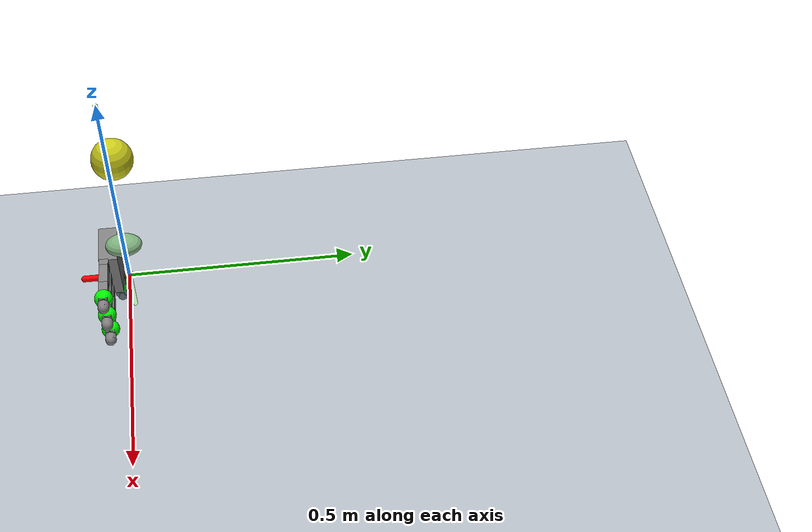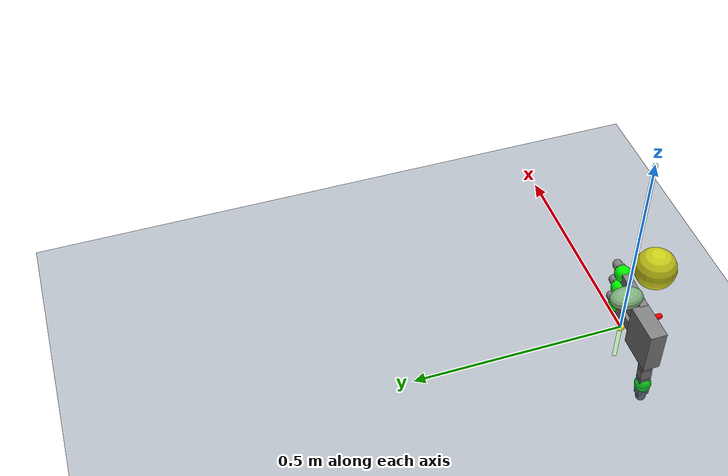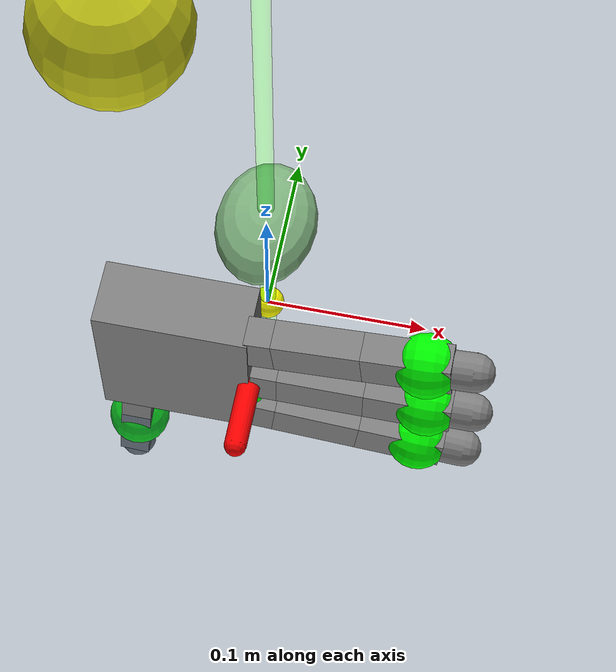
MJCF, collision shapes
<mujoco model="right_allegro_hand scene">
  <include file="right_hand.xml"/>

  <statistic center="0 0 0" extent="0.3"/>

  <visual>
    <rgba haze="0.15 0.25 0.35 1"/>
    <quality shadowsize="8192"/>
    <global azimuth="130" elevation="-40"/>
  </visual>

  <asset>
    <texture type="skybox" builtin="gradient" rgb1="0.3 0.5 0.7" rgb2="0 0 0" width="512" height="3072"/>
    <texture type="2d" name="groundplane" builtin="checker" mark="edge" rgb1="0.2 0.3 0.4" rgb2="0.1 0.2 0.3"
      markrgb="0.8 0.8 0.8" width="300" height="300"/>
    <material name="groundplane" texture="groundplane" texuniform="true" texrepeat="5 5" reflectance="0.2"/>
  </asset>

  <visual>
    <headlight diffuse="0.6 0.6 0.6" ambient="0.3 0.3 0.3" specular="0 0 0"/>
    <rgba haze="0.15 0.25 0.35 1"/>
    <global azimuth="60" elevation="-40"/>
  </visual>

  <asset>
    <texture type="skybox" builtin="gradient" rgb1="1.0 1.0 1.0" rgb2="1.0 1.0 1.0" width="512" height="3072"/>
  </asset>

  <worldbody>
    <light pos="0 0 1"/>
    <light pos="0.3 0 1.5" dir="0 0 -1" directional="true"/>
    <geom name="floor" pos="0 0 -0.1" size="0 0 0.05" type="plane" material="groundplane"/>
    <body name="object" pos="0 0 0.1">
      <freejoint/>
      <geom type="ellipsoid" size="0.03 0.04 0.02" rgba="0.5 0.7 0.5 1" condim="6" priority="1"
        friction="0.7 0.002 0.002"/>
    </body>
    <body name="ball" pos="-0.08 0.001 0.28">
      <geom type="sphere" size="0.045" rgba="0.8 0.8 0.1 1"/>
    </body>
    <body name="index_tip_target" pos="0.5 1 .5" quat="0 0 0 1" mocap="true">
      <geom type="sphere" size=".0001" contype="0" conaffinity="0" rgba=".6 .3 .3 .2"/>
    </body>
    <body name="middle_tip_target" pos="0.5 0 .5" quat="0 0 0 1" mocap="true">
      <geom type="sphere" size=".0001" contype="0" conaffinity="0" rgba=".6 .3 .3 .2"/>
    </body>
    <body name="ring_tip_target" pos="0.5 0 .5" quat="0 0 0 1" mocap="true">
      <geom type="sphere" size=".0001" contype="0" conaffinity="0" rgba=".6 .3 .3 .2"/>
    </body>
    <body name="thumb_tip_target" pos="0.5 0 .5" quat="0 0 0 1" mocap="true">
      <geom type="sphere" size=".0001" contype="0" conaffinity="0" rgba=".6 .3 .3 .2"/>
    </body>
  </worldbody>
</mujoco>

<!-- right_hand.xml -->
<mujoco model="allegro_right">

  <option cone="elliptic" impratio="10"/>

  <asset>
    <material name="black" rgba="0.2 0.2 0.2 1"/>
    <material name="white" rgba="0.9 0.9 0.9 1"/>

    <!-- meshes: keep these relative to where you store them -->
    <mesh name="gripper0_right_base_link" file="meshes/allegro_hands/base_link.stl"/>
    <mesh name="gripper0_right_link_0.0" file="meshes/allegro_hands/link_0.0.stl"/>
    <mesh name="gripper0_right_link_1.0" file="meshes/allegro_hands/link_1.0.stl"/>
    <mesh name="gripper0_right_link_2.0" file="meshes/allegro_hands/link_2.0.stl"/>
    <mesh name="gripper0_right_link_3.0" file="meshes/allegro_hands/link_3.0.stl"/>
    <mesh name="gripper0_right_link_3.0_tip" file="meshes/allegro_hands/link_3.0_tip.stl"/>
    <mesh name="gripper0_right_link_12.0_right" file="meshes/allegro_hands/link_12.0_right.stl"/>
    <mesh name="gripper0_right_link_13.0" file="meshes/allegro_hands/link_13.0.stl"/>
    <mesh name="gripper0_right_link_14.0" file="meshes/allegro_hands/link_14.0.stl"/>
    <mesh name="gripper0_right_link_15.0" file="meshes/allegro_hands/link_15.0.stl"/>
    <mesh name="gripper0_right_link_15.0_tip" file="meshes/allegro_hands/link_15.0_tip.stl"/>
  </asset>

  <worldbody>
    <body name="right_hand" pos="0 0 0" quat="0.7071068 0.7071068 0 0">
      <!-- very small inertial to avoid mjMINVAL -->
      <inertial pos="0 0 0" mass="0.001" diaginertia="0.001 0.001 0.001"/>

      <!-- force/torque site for ft sensor -->
      <site name="ft_frame" pos="0 0 0" size="0.01 0.01 0.01" rgba="1 0 0 0" type="sphere" group="1"/>

      <!-- End-effector visualization sites -->
      <body name="eef" pos="0 0 0" quat="0.707 0. -0.707 0.">
        <inertial pos="0 0 0" mass="0.001" diaginertia="0.001 0.001 0.001"/>
        <site name="grip_site" pos="0 0 0" size="0.01 0.01 0.01" rgba="1 1 0 1" type="sphere" group="2"/>
        <site name="ee_x" pos="0.1 0 0" size="0.005 0.1" quat="0.707105 0 0.707108 0" rgba="1 0 0 0" type="cylinder" group="1"/>
        <site name="ee_y" pos="0 0.1 0" size="0.005 0.1" quat="0.707105 0.707108 0 0" rgba="0 1 0 0" type="cylinder" group="1"/>
        <site name="ee_z" pos="0 0 0.1" size="0.005 0.1" quat="1 0 0 0" rgba="0 0 1 0" type="cylinder" group="1"/>
        <site name="grip_site_cylinder" pos="0 0 0" quat="-0.5 -0.5 -0.5 0.5" size="0.005 0.5" rgba="0 1 0 0.3" type="cylinder" group="1"/>
      </body>

      <!-- Palm (explicit visual + collision geoms) -->
      <body name="palm" pos="0 0 0.05" quat="0 1 0 1">
        <inertial pos="0 0 0" mass="0.001" diaginertia="0.001 0.001 0.001"/>
        <!-- small axis geoms for orientation check -->
        <geom type="capsule" fromto="0 0 0 0.05 0 0" size="0.007" rgba="1 0 0 1"/>
        <geom type="capsule" fromto="0 0 0 0 0.05 0" size="0.007" rgba="0 1 0 1"/>
        <geom type="capsule" fromto="0 0 0 0 0 0.05" size="0.007" rgba="0 0 1 1"/>

        <!-- Visual geom (mesh) -->
        <geom name="palm_vis"
              type="mesh"
              mesh="base_link"
              contype="0"
              conaffinity="0"
              group="2"
              material="black"/>
        <!-- Collision geom -->
        <geom name="palm_col"
              type="box"
              group="3"
              mass="0"
              density="800"
              size="0.0204 0.0565 0.0475"
              pos="-0.0093 0 -0.0475"/>

        <!-- Index finger (ff_)  -->
        <body name="ff_base" pos="0 0.0435 -0.001542" quat="0.999048 -0.0436194 0 0">
          <inertial pos="0 0 0" mass="0.001" diaginertia="0.001 0.001 0.001"/>
          <!-- base joint: class 'base' expanded: axis=0 0 1, range, damping -->
          <joint name="ffj0" axis="0 0 1" range="-0.47 0.47" damping=".1"/>
          <!-- visual and collision for base -->
          <geom name="ff_base_vis"
                type="mesh"
                mesh="link_0.0"
                contype="0"
                conaffinity="0"
                group="2"
                material="black"/>
          <geom name="ff_base_col"
                type="box"
                group="3"
                density="800"
                size="0.0098 0.01375 0.0082"
                pos="0 0 0.0082"/>

          <body name="ff_proximal" pos="0 0 0.0164">
            <inertial pos="0 0 0" mass="0.001" diaginertia="0.001 0.001 0.001"/>
            <!-- proximal joint: inherits top-level axis 0 1 0, range from proximal default -->
            <joint name="ffj1" axis="0 1 0" range="-0.196 1.61" damping=".1"/>
            <geom name="ff_proximal_vis"
                  type="mesh"
                  mesh="link_1.0"
                  contype="0"
                  conaffinity="0"
                  group="2"
                  material="black"/>
            <geom name="ff_proximal_col"
                  type="box"
                  group="3"
                  density="800"
                  size="0.0098 0.01375 0.027"
                  pos="0 0 0.027"/>

            <body name="ff_medial" pos="0 0 0.054">
              <inertial pos="0 0 0" mass="0.001" diaginertia="0.001 0.001 0.001"/>
              <joint name="ffj2" axis="0 1 0" range="-0.174 1.709" damping=".1"/>
              <geom name="ff_medial_vis"
                    type="mesh"
                    mesh="link_2.0"
                    contype="0"
                    conaffinity="0"
                    group="2"
                    material="black"/>
              <geom name="ff_medial_col"
                    type="box"
                    group="3"
                    density="800"
                    size="0.0098 0.01375 0.0192"
                    pos="0 0 0.0192"/>

              <body name="ff_distal" pos="0 0 0.0384">
                <inertial pos="0 0 0" mass="0.001" diaginertia="0.001 0.001 0.001"/>
                <joint name="ffj3" axis="0 1 0" range="-0.227 1.618" damping=".1"/>
                <geom name="ff_distal_vis"
                      type="mesh"
                      mesh="link_3.0"
                      contype="0"
                      conaffinity="0"
                      group="2"
                      material="black"/>
                <geom name="ff_distal_col"
                      type="box"
                      group="3"
                      density="800"
                      size="0.0098 0.01375 0.008"
                      pos="0 0 0.008"/>

                <body name="ff_tip">
                  <inertial pos="0 0 0" mass="0.001" diaginertia="0.001 0.001 0.001"/>
                  <geom name="ff_tip_vis"
                        type="mesh"
                        mesh="link_3.0_tip"
                        contype="0"
                        conaffinity="0"
                        group="2"
                        material="white"
                        pos="0 0 0.0267"/>
                  <geom name="ff_tip_col"
                        type="capsule"
                        group="3"
                        density="800"
                        size="0.012 0.01"
                        pos="0 0 0.019"/>
                  <site name="index_tip" pos="-0.00 -0.0 0.0" size="0.02" rgba="0 1 0 1"/>
                </body>
              </body>
            </body>
          </body>
        </body>

        <!--- Middle finger (mf_)  -->
        <body name="mf_base" pos="0 0 0.0007">
          <inertial pos="0 0 0" mass="0.001" diaginertia="0.001 0.001 0.001"/>
          <joint name="mfj0" axis="0 0 1" range="-0.47 0.47" damping=".1"/>
          <geom name="mf_base_vis"
                type="mesh"
                mesh="link_0.0"
                contype="0"
                conaffinity="0"
                group="2"
                material="black"/>
          <geom name="mf_base_col"
                type="box"
                group="3"
                density="800"
                size="0.0098 0.01375 0.0082"
                pos="0 0 0.0082"/>

          <body name="mf_proximal" pos="0 0 0.0164">
            <inertial pos="0 0 0" mass="0.001" diaginertia="0.001 0.001 0.001"/>
            <joint name="mfj1" axis="0 1 0" range="-0.196 1.61" damping=".1"/>
            <geom name="mf_proximal_vis"
                  type="mesh"
                  mesh="link_1.0"
                  contype="0"
                  conaffinity="0"
                  group="2"
                  material="black"/>
            <geom name="mf_proximal_col"
                  type="box"
                  group="3"
                  density="800"
                  size="0.0098 0.01375 0.027"
                  pos="0 0 0.027"/>

            <body name="mf_medial" pos="0 0 0.054">
              <inertial pos="0 0 0" mass="0.001" diaginertia="0.001 0.001 0.001"/>
              <joint name="mfj2" axis="0 1 0" range="-0.174 1.709" damping=".1"/>
              <geom name="mf_medial_vis"
                    type="mesh"
                    mesh="link_2.0"
                    contype="0"
                    conaffinity="0"
                    group="2"
                    material="black"/>
              <geom name="mf_medial_col"
                    type="box"
                    group="3"
                    density="800"
                    size="0.0098 0.01375 0.0192"
                    pos="0 0 0.0192"/>

              <body name="mf_distal" pos="0 0 0.0384">
                <inertial pos="0 0 0" mass="0.001" diaginertia="0.001 0.001 0.001"/>
                <joint name="mfj3" axis="0 1 0" range="-0.227 1.618" damping=".1"/>
                <geom name="mf_distal_vis"
                      type="mesh"
                      mesh="link_3.0"
                      contype="0"
                      conaffinity="0"
                      group="2"
                      material="black"/>
                <geom name="mf_distal_col"
                      type="box"
                      group="3"
                      density="800"
                      size="0.0098 0.01375 0.008"
                      pos="0 0 0.008"/>

                <body name="mf_tip">
                  <inertial pos="0 0 0" mass="0.001" diaginertia="0.001 0.001 0.001"/>
                  <geom name="mf_tip_vis"
                        type="mesh"
                        mesh="link_3.0_tip"
                        contype="0"
                        conaffinity="0"
                        group="2"
                        material="white"
                        pos="0 0 0.0267"/>
                  <geom name="mf_tip_col"
                        type="capsule"
                        group="3"
                        density="800"
                        size="0.012 0.01"
                        pos="0 0 0.019"/>
                  <site name="middle_tip" pos="-0.00 -0.0 0.0" size="0.02" rgba="0 1 0 1"/>
                </body>
              </body>
            </body>
          </body>
        </body>

        <!-- Ring finger (rf_)  -->
        <body name="rf_base" pos="0 -0.0435 -0.001542" quat="0.999048 0.0436194 0 0">
          <inertial pos="0 0 0" mass="0.001" diaginertia="0.001 0.001 0.001"/>
          <joint name="rfj0" axis="0 0 1" range="-0.47 0.47" damping=".1"/>
          <geom name="rf_base_vis"
                type="mesh"
                mesh="link_0.0"
                contype="0"
                conaffinity="0"
                group="2"
                material="black"/>
          <geom name="rf_base_col"
                type="box"
                group="3"
                density="800"
                size="0.0098 0.01375 0.0082"
                pos="0 0 0.0082"/>

          <body name="rf_proximal" pos="0 0 0.0164">
            <inertial pos="0 0 0" mass="0.001" diaginertia="0.001 0.001 0.001"/>
            <joint name="rfj1" axis="0 1 0" range="-0.196 1.61" damping=".1"/>
            <geom name="rf_proximal_vis"
                  type="mesh"
                  mesh="link_1.0"
                  contype="0"
                  conaffinity="0"
                  group="2"
                  material="black"/>
            <geom name="rf_proximal_col"
                  type="box"
                  group="3"
                  density="800"
                  size="0.0098 0.01375 0.027"
                  pos="0 0 0.027"/>

            <body name="rf_medial" pos="0 0 0.054">
              <inertial pos="0 0 0" mass="0.001" diaginertia="0.001 0.001 0.001"/>
              <joint name="rfj2" axis="0 1 0" range="-0.174 1.709" damping=".1"/>
              <geom name="rf_medial_vis"
                    type="mesh"
                    mesh="link_2.0"
                    contype="0"
                    conaffinity="0"
                    group="2"
                    material="black"/>
              <geom name="rf_medial_col"
                    type="box"
                    group="3"
                    density="800"
                    size="0.0098 0.01375 0.0192"
                    pos="0 0 0.0192"/>

              <body name="rf_distal" pos="0 0 0.0384">
                <inertial pos="0 0 0" mass="0.001" diaginertia="0.001 0.001 0.001"/>
                <joint name="rfj3" axis="0 1 0" range="-0.227 1.618" damping=".1"/>
                <geom name="rf_distal_vis"
                      type="mesh"
                      mesh="link_3.0"
                      contype="0"
                      conaffinity="0"
                      group="2"
                      material="black"/>
                <geom name="rf_distal_col"
                      type="box"
                      group="3"
                      density="800"
                      size="0.0098 0.01375 0.008"
                      pos="0 0 0.008"/>

                <body name="rf_tip">
                  <inertial pos="0 0 0" mass="0.001" diaginertia="0.001 0.001 0.001"/>
                  <geom name="rf_tip_vis"
                        type="mesh"
                        mesh="link_3.0_tip"
                        contype="0"
                        conaffinity="0"
                        group="2"
                        material="white"
                        pos="0 0 0.0267"/>
                  <geom name="rf_tip_col"
                        type="capsule"
                        group="3"
                        density="800"
                        size="0.012 0.01"
                        pos="0 0 0.019"/>
                  <site name="ring_tip" pos="-0.00 -0.0 0.0" size="0.02" rgba="0 1 0 1"/>
                </body>
              </body>
            </body>
          </body>
        </body>

        <!-- Thumb (th_) -->
        <!-- thumb_base joint uses thumb_base defaults: axis="-1 0 0", range="0.263 1.396" -->
        <body name="th_base" pos="-0.0182 0.019333 -0.045987" quat="0.477714 -0.521334 -0.521334 -0.477714">
          <inertial pos="0 0 0" mass="0.001" diaginertia="0.001 0.001 0.001"/>
          <joint name="thj0" axis="-1 0 0" range="0.263 1.396" damping=".1"/>
          <geom name="th_base_vis"
                type="mesh"
                mesh="link_12.0_right"
                contype="0"
                conaffinity="0"
                group="2"
                material="black"/>
          <geom name="th_base_col"
                type="box"
                group="3"
                density="800"
                size="0.0179 0.017 0.02275"
                pos="-0.0179 0.009 0.0145"/>

          <body name="th_proximal" pos="-0.027 0.005 0.0399">
            <inertial pos="0 0 0" mass="0.001" diaginertia="0.001 0.001 0.001"/>
            <!-- thumb_proximal joint axis=0 0 1 range -0.105 1.163 -->
            <joint name="thj1" axis="0 0 1" range="-0.105 1.163" damping=".1"/>
            <geom name="th_proximal_vis"
                  type="mesh"
                  mesh="link_13.0"
                  contype="0"
                  conaffinity="0"
                  group="2"
                  material="black"/>
            <geom name="th_proximal_col"
                  type="box"
                  group="3"
                  density="800"
                  size="0.0098 0.01375 0.00885"
                  pos="0 0 0.00885"/>

            <body name="th_medial" pos="0 0 0.0177">
              <inertial pos="0 0 0" mass="0.001" diaginertia="0.001 0.001 0.001"/>
              <!-- thumb_medial: uses range from thumb_medial default -->
              <joint name="thj2" axis="0 1 0" range="-0.189 1.644" damping=".1"/>
              <geom name="th_medial_vis"
                    type="mesh"
                    mesh="link_14.0"
                    contype="0"
                    conaffinity="0"
                    group="2"
                    material="black"/>
              <geom name="th_medial_col"
                    type="box"
                    group="3"
                    density="800"
                    size="0.0098 0.01375 0.0257"
                    pos="0 0 0.0257"/>

              <body name="th_distal" pos="0 0 0.0514">
                <inertial pos="0 0 0" mass="0.001" diaginertia="0.001 0.001 0.001"/>
                <joint name="thj3" axis="0 1 0" range="-0.162 1.719" damping=".1"/>
                <geom name="th_distal_vis"
                      type="mesh"
                      mesh="link_15.0"
                      contype="0"
                      conaffinity="0"
                      group="2"
                      material="black"/>
                <geom name="th_distal_col"
                      type="box"
                      group="3"
                      density="800"
                      size="0.0098 0.01375 0.0157"
                      pos="0 0 0.0157"/>

                <body name="th_tip">
                  <inertial pos="0 0 0" mass="0.001" diaginertia="0.001 0.001 0.001"/>
                  <geom name="th_tip_vis"
                        type="mesh"
                        mesh="link_15.0_tip"
                        contype="0"
                        conaffinity="0"
                        group="2"
                        material="white"
                        pos="0 0 0.0423"/>
                  <geom name="th_tip_col"
                        type="capsule"
                        group="3"
                        density="800"
                        size="0.012 0.008"
                        pos="0 0 0.035"/>
                  <site name="thumb_tip" pos="-0.00 -0. -0.0" size="0.02" rgba="0 1 0 1"/>
                </body>
              </body>
            </body>
          </body>
        </body>

      </body> <!-- end palm -->
    </body> <!-- end right_hand -->
  </worldbody>

  <contact>
    <exclude body1="palm" body2="ff_base"/>
    <exclude body1="palm" body2="mf_base"/>
    <exclude body1="palm" body2="rf_base"/>
    <exclude body1="palm" body2="th_base"/>
    <exclude body1="palm" body2="th_proximal"/>
  </contact>

  <actuator>
    <!-- base actuators (expanded from class="base") -->
    <position name="ffa0" joint="ffj0" ctrlrange="-0.47 0.47" kp="1"/>
    <position name="mfa0" joint="mfj0" ctrlrange="-0.47 0.47" kp="1"/>
    <position name="rfa0" joint="rfj0" ctrlrange="-0.47 0.47" kp="1"/>

    <!-- proximal actuators (expanded from class="proximal") -->
    <position name="ffa1" joint="ffj1" ctrlrange="-0.196 1.61" kp="1"/>
    <position name="mfa1" joint="mfj1" ctrlrange="-0.196 1.61" kp="1"/>
    <position name="rfa1" joint="rfj1" ctrlrange="-0.196 1.61" kp="1"/>

    <!-- medial actuators -->
    <position name="ffa2" joint="ffj2" ctrlrange="-0.174 1.709" kp="1"/>
    <position name="mfa2" joint="mfj2" ctrlrange="-0.174 1.709" kp="1"/>
    <position name="rfa2" joint="rfj2" ctrlrange="-0.174 1.709" kp="1"/>

    <!-- distal actuators -->
    <position name="ffa3" joint="ffj3" ctrlrange="-0.227 1.618" kp="1"/>
    <position name="mfa3" joint="mfj3" ctrlrange="-0.227 1.618" kp="1"/>
    <position name="rfa3" joint="rfj3" ctrlrange="-0.227 1.618" kp="1"/>

    <!-- thumb actuators -->
    <position name="tha0" joint="thj0" ctrlrange="0.263 1.396" kp="1"/>
    <position name="tha1" joint="thj1" ctrlrange="-0.105 1.163" kp="1"/>
    <position name="tha2" joint="thj2" ctrlrange="-0.189 1.644" kp="1"/>
    <position name="tha3" joint="thj3" ctrlrange="-0.162 1.719" kp="1"/>
  </actuator>

  <sensor>
    <force name="force_ee" site="ft_frame"/>
    <torque name="torque_ee" site="ft_frame"/>
  </sensor>
</mujoco>
